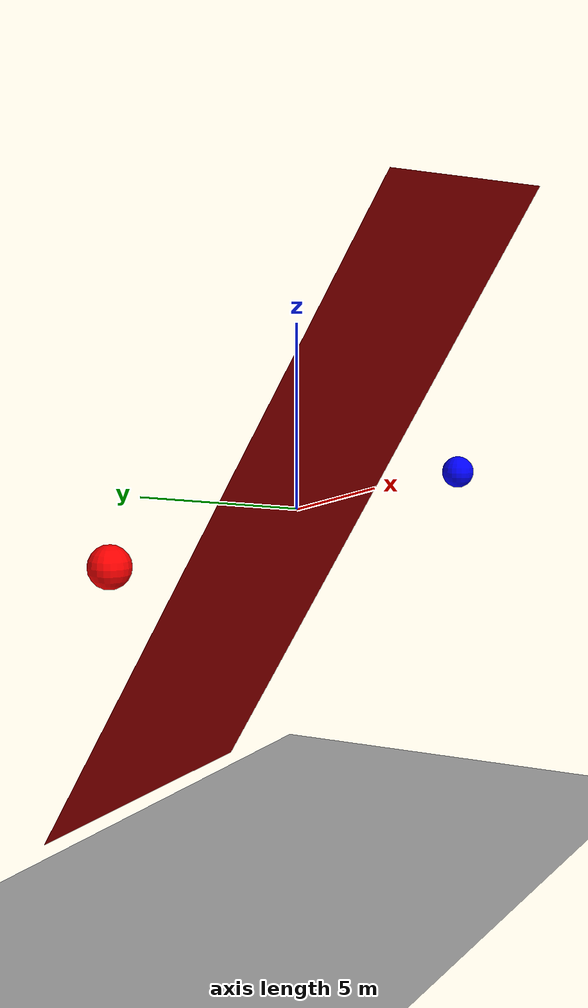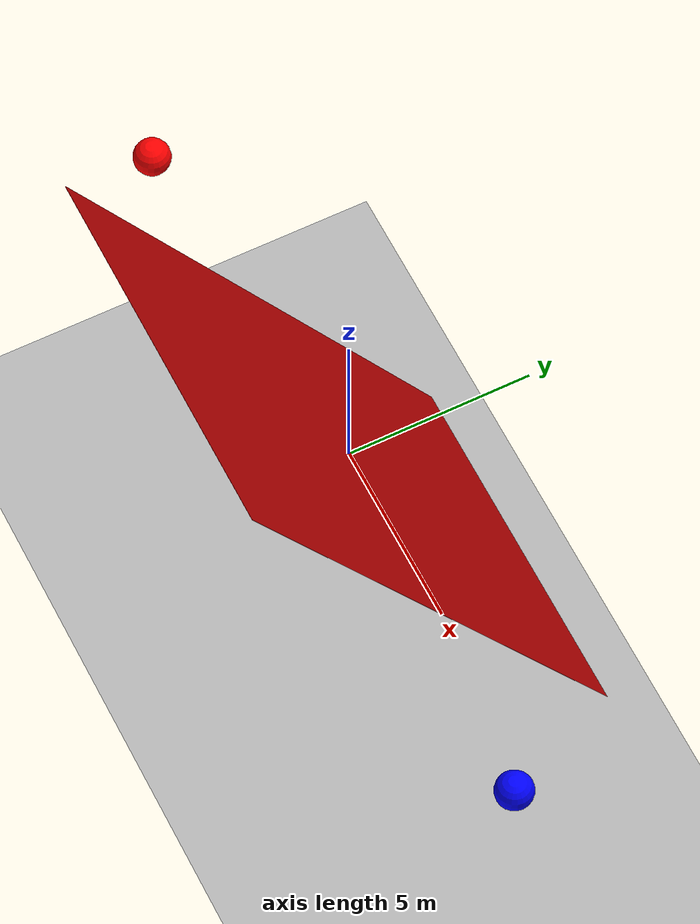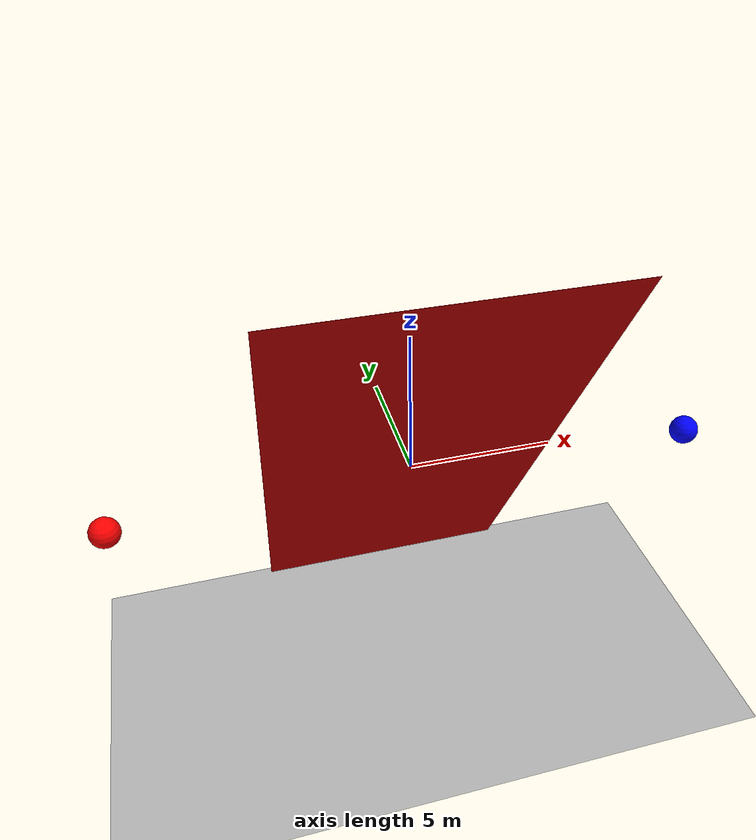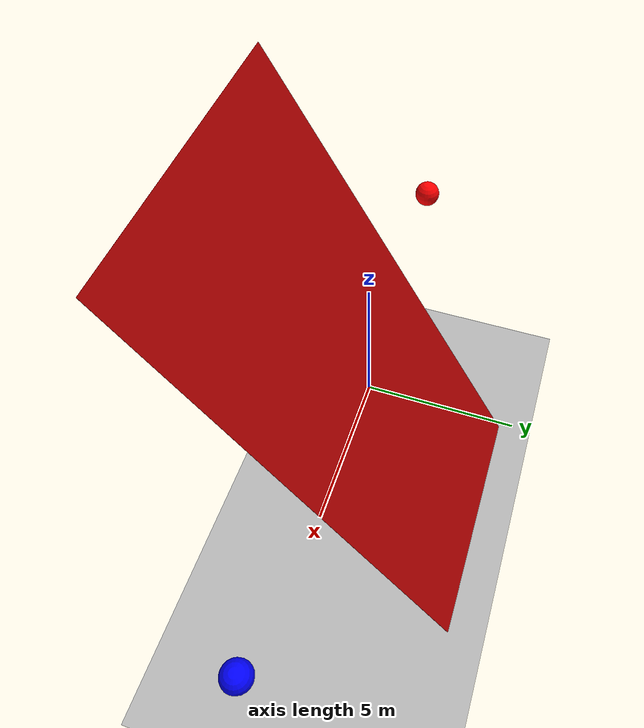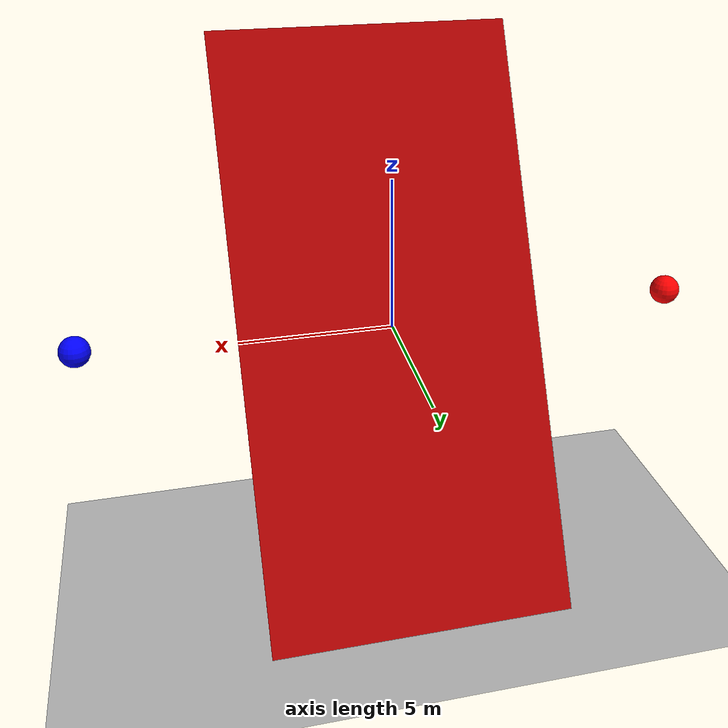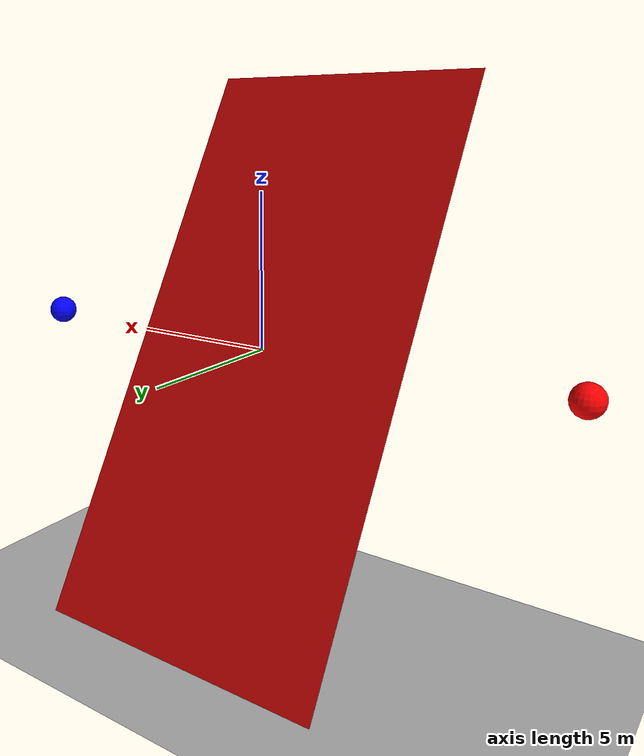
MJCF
<mujoco>
        <option gravity="0 0 -9.81"/>
        <worldbody>
            <light diffuse="0.5 0.5 0.5" pos="0 0 3" dir="0 0 -1"/>

            <!-- Inclined Plane -->
            <body name="object_4" pos="0 0 0">
                <geom type="plane" size="5 10 0.1" rgba="0.7 0 0 1" friction="0.2 0.2 0.2" quat="0.5 0.86 0 0"/>
            </body>

            <!-- Big Plane -->
            <body name="object_3" pos="-10 0 -10">
                <geom type="plane" size="30 30 0.1" rgba="0.7 0.7 0.7 1" friction="1 1 1"/>
            </body>

            <!-- Solid Sphere -->
            <body name="object_1" pos="-10 -0.6 0">
                <geom type="sphere" size="0.5" density="1" rgba="1 0 0 1"/>
                <joint name="object_1_joint" type="free"/>
            </body>

            <!-- Hollow Sphere -->
            <body name="object_2" pos="10 -0.6 0">
                <geom type="sphere" size="0.5" density="0.5" rgba="0 0 1 1"/>
                <joint name="object_2_joint" type="free"/>
            </body>
        </worldbody>
    </mujoco>
